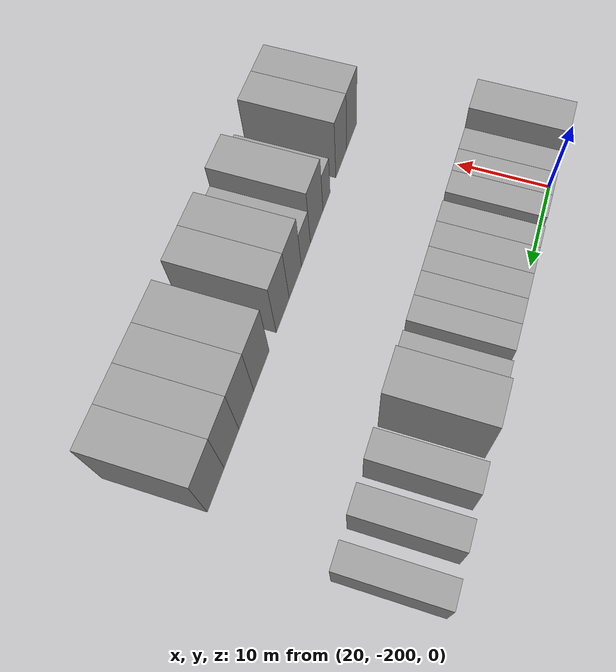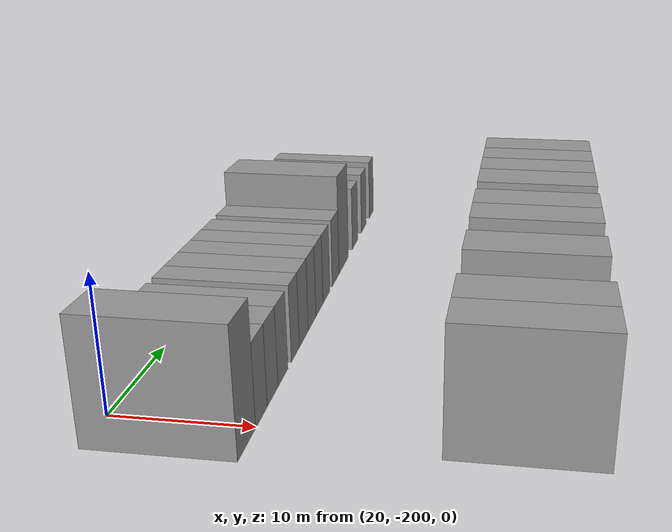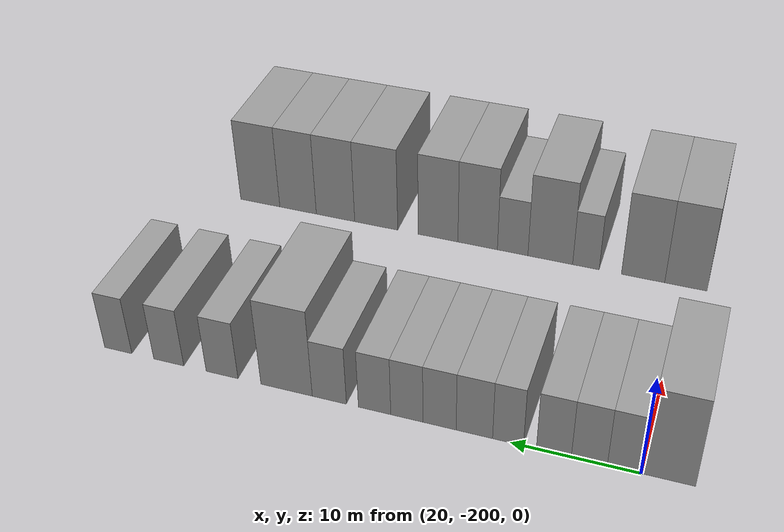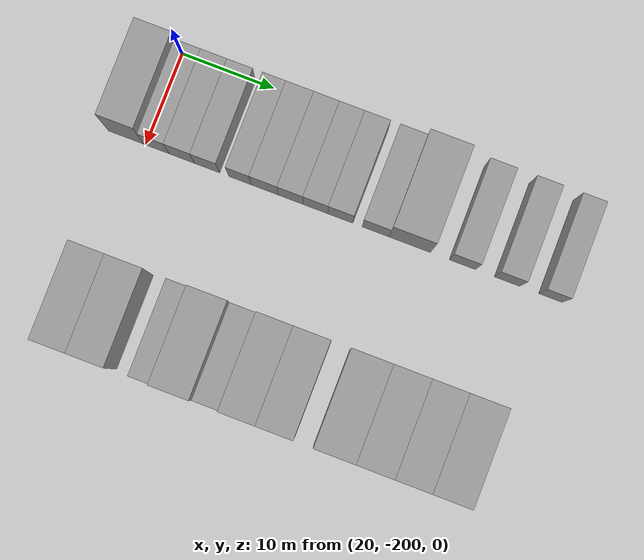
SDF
<sdf version="1.6">
 <world name="default">
  <model name="building_1">
   <static>1</static>
   <pose>25.0000 -202.0835 0 0.000000 0.000000 0.000000</pose>
   <link name="link">
    <pose>0 0 4.50 0 0 0</pose>
    <collision name="collision"><geometry><box><size>10.0000 3.8331 9.0000</size></box></geometry></collision>
    <visual name="visual">
     <cast_shadows>0</cast_shadows>
     <geometry><box><size>10.0000 3.8331 9.0000</size></box></geometry>
     <material>
      <script>
       <uri>model://grey_wall/materials/scripts</uri>
       <uri>model://grey_wall/materials/textures</uri>
       <name>vrc/grey_wall</name>
      </script>
     </material>
    </visual>
   </link>
  </model>
  <model name="building_2">
   <static>1</static>
   <pose>25.0000 -198.8063 0 0.000000 0.000000 0.000000</pose>
   <link name="link">
    <pose>0 0 3.00 0 0 0</pose>
    <collision name="collision"><geometry><box><size>10.0000 2.7212 6.0000</size></box></geometry></collision>
    <visual name="visual">
     <cast_shadows>0</cast_shadows>
     <geometry><box><size>10.0000 2.7212 6.0000</size></box></geometry>
     <material>
      <script>
       <uri>model://grey_wall/materials/scripts</uri>
       <uri>model://grey_wall/materials/textures</uri>
       <name>vrc/grey_wall</name>
      </script>
     </material>
    </visual>
   </link>
  </model>
  <model name="building_3">
   <static>1</static>
   <pose>25.0000 -196.0775 0 0.000000 0.000000 0.000000</pose>
   <link name="link">
    <pose>0 0 3.00 0 0 0</pose>
    <collision name="collision"><geometry><box><size>10.0000 2.7364 6.0000</size></box></geometry></collision>
    <visual name="visual">
     <cast_shadows>0</cast_shadows>
     <geometry><box><size>10.0000 2.7364 6.0000</size></box></geometry>
     <material>
      <script>
       <uri>model://grey_wall/materials/scripts</uri>
       <uri>model://grey_wall/materials/textures</uri>
       <name>vrc/grey_wall</name>
      </script>
     </material>
    </visual>
   </link>
  </model>
  <model name="building_4">
   <static>1</static>
   <pose>25.0000 -193.3629 0 0.000000 0.000000 0.000000</pose>
   <link name="link">
    <pose>0 0 3.00 0 0 0</pose>
    <collision name="collision"><geometry><box><size>10.0000 2.6928 6.0000</size></box></geometry></collision>
    <visual name="visual">
     <cast_shadows>0</cast_shadows>
     <geometry><box><size>10.0000 2.6928 6.0000</size></box></geometry>
     <material>
      <script>
       <uri>model://grey_wall/materials/scripts</uri>
       <uri>model://grey_wall/materials/textures</uri>
       <name>vrc/grey_wall</name>
      </script>
     </material>
    </visual>
   </link>
  </model>
  <model name="building_5">
   <static>1</static>
   <pose>25.0000 -189.8049 0 0.000000 0.000000 0.000000</pose>
   <link name="link">
    <pose>0 0 3.00 0 0 0</pose>
    <collision name="collision"><geometry><box><size>10.0000 2.4231 6.0000</size></box></geometry></collision>
    <visual name="visual">
     <cast_shadows>0</cast_shadows>
     <geometry><box><size>10.0000 2.4231 6.0000</size></box></geometry>
     <material>
      <script>
       <uri>model://grey_wall/materials/scripts</uri>
       <uri>model://grey_wall/materials/textures</uri>
       <name>vrc/grey_wall</name>
      </script>
     </material>
    </visual>
   </link>
  </model>
  <model name="building_6">
   <static>1</static>
   <pose>25.0000 -187.1418 0 0.000000 0.000000 0.000000</pose>
   <link name="link">
    <pose>0 0 3.00 0 0 0</pose>
    <collision name="collision"><geometry><box><size>10.0000 2.9031 6.0000</size></box></geometry></collision>
    <visual name="visual">
     <cast_shadows>0</cast_shadows>
     <geometry><box><size>10.0000 2.9031 6.0000</size></box></geometry>
     <material>
      <script>
       <uri>model://grey_wall/materials/scripts</uri>
       <uri>model://grey_wall/materials/textures</uri>
       <name>vrc/grey_wall</name>
      </script>
     </material>
    </visual>
   </link>
  </model>
  <model name="building_7">
   <static>1</static>
   <pose>25.0000 -184.3537 0 0.000000 0.000000 0.000000</pose>
   <link name="link">
    <pose>0 0 3.00 0 0 0</pose>
    <collision name="collision"><geometry><box><size>10.0000 2.6732 6.0000</size></box></geometry></collision>
    <visual name="visual">
     <cast_shadows>0</cast_shadows>
     <geometry><box><size>10.0000 2.6732 6.0000</size></box></geometry>
     <material>
      <script>
       <uri>model://grey_wall/materials/scripts</uri>
       <uri>model://grey_wall/materials/textures</uri>
       <name>vrc/grey_wall</name>
      </script>
     </material>
    </visual>
   </link>
  </model>
  <model name="building_8">
   <static>1</static>
   <pose>25.0000 -181.7031 0 0.000000 0.000000 0.000000</pose>
   <link name="link">
    <pose>0 0 3.00 0 0 0</pose>
    <collision name="collision"><geometry><box><size>10.0000 2.6281 6.0000</size></box></geometry></collision>
    <visual name="visual">
     <cast_shadows>0</cast_shadows>
     <geometry><box><size>10.0000 2.6281 6.0000</size></box></geometry>
     <material>
      <script>
       <uri>model://grey_wall/materials/scripts</uri>
       <uri>model://grey_wall/materials/textures</uri>
       <name>vrc/grey_wall</name>
      </script>
     </material>
    </visual>
   </link>
  </model>
  <model name="building_9">
   <static>1</static>
   <pose>25.0000 -179.0499 0 0.000000 0.000000 0.000000</pose>
   <link name="link">
    <pose>0 0 3.00 0 0 0</pose>
    <collision name="collision"><geometry><box><size>10.0000 2.6783 6.0000</size></box></geometry></collision>
    <visual name="visual">
     <cast_shadows>0</cast_shadows>
     <geometry><box><size>10.0000 2.6783 6.0000</size></box></geometry>
     <material>
      <script>
       <uri>model://grey_wall/materials/scripts</uri>
       <uri>model://grey_wall/materials/textures</uri>
       <name>vrc/grey_wall</name>
      </script>
     </material>
    </visual>
   </link>
  </model>
  <model name="building_10">
   <static>1</static>
   <pose>25.0000 -175.2696 0 0.000000 0.000000 0.000000</pose>
   <link name="link">
    <pose>0 0 3.00 0 0 0</pose>
    <collision name="collision"><geometry><box><size>10.0000 2.8823 6.0000</size></box></geometry></collision>
    <visual name="visual">
     <cast_shadows>0</cast_shadows>
     <geometry><box><size>10.0000 2.8823 6.0000</size></box></geometry>
     <material>
      <script>
       <uri>model://grey_wall/materials/scripts</uri>
       <uri>model://grey_wall/materials/textures</uri>
       <name>vrc/grey_wall</name>
      </script>
     </material>
    </visual>
   </link>
  </model>
  <model name="building_11">
   <static>1</static>
   <pose>25.0000 -171.6213 0 0.000000 0.000000 0.000000</pose>
   <link name="link">
    <pose>0 0 4.50 0 0 0</pose>
    <collision name="collision"><geometry><box><size>10.0000 4.4142 9.0000</size></box></geometry></collision>
    <visual name="visual">
     <cast_shadows>0</cast_shadows>
     <geometry><box><size>10.0000 4.4142 9.0000</size></box></geometry>
     <material>
      <script>
       <uri>model://grey_wall/materials/scripts</uri>
       <uri>model://grey_wall/materials/textures</uri>
       <name>vrc/grey_wall</name>
      </script>
     </material>
    </visual>
   </link>
  </model>
  <model name="building_12">
   <static>1</static>
   <pose>25.0000 -166.0089 0 0.000000 0.000000 0.000000</pose>
   <link name="link">
    <pose>0 0 3.00 0 0 0</pose>
    <collision name="collision"><geometry><box><size>10.0000 2.8105 6.0000</size></box></geometry></collision>
    <visual name="visual">
     <cast_shadows>0</cast_shadows>
     <geometry><box><size>10.0000 2.8105 6.0000</size></box></geometry>
     <material>
      <script>
       <uri>model://grey_wall/materials/scripts</uri>
       <uri>model://grey_wall/materials/textures</uri>
       <name>vrc/grey_wall</name>
      </script>
     </material>
    </visual>
   </link>
  </model>
  <model name="building_13">
   <static>1</static>
   <pose>25.0000 -161.2467 0 0.000000 0.000000 0.000000</pose>
   <link name="link">
    <pose>0 0 3.00 0 0 0</pose>
    <collision name="collision"><geometry><box><size>10.0000 2.7138 6.0000</size></box></geometry></collision>
    <visual name="visual">
     <cast_shadows>0</cast_shadows>
     <geometry><box><size>10.0000 2.7138 6.0000</size></box></geometry>
     <material>
      <script>
       <uri>model://grey_wall/materials/scripts</uri>
       <uri>model://grey_wall/materials/textures</uri>
       <name>vrc/grey_wall</name>
      </script>
     </material>
    </visual>
   </link>
  </model>
  <model name="building_14">
   <static>1</static>
   <pose>25.0000 -156.6414 0 0.000000 0.000000 0.000000</pose>
   <link name="link">
    <pose>0 0 3.00 0 0 0</pose>
    <collision name="collision"><geometry><box><size>10.0000 2.4969 6.0000</size></box></geometry></collision>
    <visual name="visual">
     <cast_shadows>0</cast_shadows>
     <geometry><box><size>10.0000 2.4969 6.0000</size></box></geometry>
     <material>
      <script>
       <uri>model://grey_wall/materials/scripts</uri>
       <uri>model://grey_wall/materials/textures</uri>
       <name>vrc/grey_wall</name>
      </script>
     </material>
    </visual>
   </link>
  </model>
  <model name="building_103">
   <static>1</static>
   <pose>47.0000 -200.1526 0 0.000000 0.000000 0.000000</pose>
   <link name="link">
    <pose>0 0 4.50 0 0 0</pose>
    <collision name="collision"><geometry><box><size>10.0000 3.6948 9.0000</size></box></geometry></collision>
    <visual name="visual">
     <cast_shadows>0</cast_shadows>
     <geometry><box><size>10.0000 3.6948 9.0000</size></box></geometry>
     <material>
      <script>
       <uri>model://grey_wall/materials/scripts</uri>
       <uri>model://grey_wall/materials/textures</uri>
       <name>vrc/grey_wall</name>
      </script>
     </material>
    </visual>
   </link>
  </model>
  <model name="building_104">
   <static>1</static>
   <pose>47.0000 -196.3821 0 0.000000 0.000000 0.000000</pose>
   <link name="link">
    <pose>0 0 4.50 0 0 0</pose>
    <collision name="collision"><geometry><box><size>10.0000 3.8462 9.0000</size></box></geometry></collision>
    <visual name="visual">
     <cast_shadows>0</cast_shadows>
     <geometry><box><size>10.0000 3.8462 9.0000</size></box></geometry>
     <material>
      <script>
       <uri>model://grey_wall/materials/scripts</uri>
       <uri>model://grey_wall/materials/textures</uri>
       <name>vrc/grey_wall</name>
      </script>
     </material>
    </visual>
   </link>
  </model>
  <model name="building_105">
   <static>1</static>
   <pose>47.0000 -191.2545 0 0.000000 0.000000 0.000000</pose>
   <link name="link">
    <pose>0 0 3.00 0 0 0</pose>
    <collision name="collision"><geometry><box><size>10.0000 2.4089 6.0000</size></box></geometry></collision>
    <visual name="visual">
     <cast_shadows>0</cast_shadows>
     <geometry><box><size>10.0000 2.4089 6.0000</size></box></geometry>
     <material>
      <script>
       <uri>model://grey_wall/materials/scripts</uri>
       <uri>model://grey_wall/materials/textures</uri>
       <name>vrc/grey_wall</name>
      </script>
     </material>
    </visual>
   </link>
  </model>
  <model name="building_106">
   <static>1</static>
   <pose>47.0000 -187.9892 0 0.000000 0.000000 0.000000</pose>
   <link name="link">
    <pose>0 0 4.50 0 0 0</pose>
    <collision name="collision"><geometry><box><size>10.0000 4.1216 9.0000</size></box></geometry></collision>
    <visual name="visual">
     <cast_shadows>0</cast_shadows>
     <geometry><box><size>10.0000 4.1216 9.0000</size></box></geometry>
     <material>
      <script>
       <uri>model://grey_wall/materials/scripts</uri>
       <uri>model://grey_wall/materials/textures</uri>
       <name>vrc/grey_wall</name>
      </script>
     </material>
    </visual>
   </link>
  </model>
  <model name="building_107">
   <static>1</static>
   <pose>47.0000 -184.5022 0 0.000000 0.000000 0.000000</pose>
   <link name="link">
    <pose>0 0 3.00 0 0 0</pose>
    <collision name="collision"><geometry><box><size>10.0000 2.8522 6.0000</size></box></geometry></collision>
    <visual name="visual">
     <cast_shadows>0</cast_shadows>
     <geometry><box><size>10.0000 2.8522 6.0000</size></box></geometry>
     <material>
      <script>
       <uri>model://grey_wall/materials/scripts</uri>
       <uri>model://grey_wall/materials/textures</uri>
       <name>vrc/grey_wall</name>
      </script>
     </material>
    </visual>
   </link>
  </model>
  <model name="building_108">
   <static>1</static>
   <pose>47.0000 -181.2032 0 0.000000 0.000000 0.000000</pose>
   <link name="link">
    <pose>0 0 4.50 0 0 0</pose>
    <collision name="collision"><geometry><box><size>10.0000 3.7458 9.0000</size></box></geometry></collision>
    <visual name="visual">
     <cast_shadows>0</cast_shadows>
     <geometry><box><size>10.0000 3.7458 9.0000</size></box></geometry>
     <material>
      <script>
       <uri>model://grey_wall/materials/scripts</uri>
       <uri>model://grey_wall/materials/textures</uri>
       <name>vrc/grey_wall</name>
      </script>
     </material>
    </visual>
   </link>
  </model>
  <model name="building_109">
   <static>1</static>
   <pose>47.0000 -177.4245 0 0.000000 0.000000 0.000000</pose>
   <link name="link">
    <pose>0 0 4.50 0 0 0</pose>
    <collision name="collision"><geometry><box><size>10.0000 3.8117 9.0000</size></box></geometry></collision>
    <visual name="visual">
     <cast_shadows>0</cast_shadows>
     <geometry><box><size>10.0000 3.8117 9.0000</size></box></geometry>
     <material>
      <script>
       <uri>model://grey_wall/materials/scripts</uri>
       <uri>model://grey_wall/materials/textures</uri>
       <name>vrc/grey_wall</name>
      </script>
     </material>
    </visual>
   </link>
  </model>
  <model name="building_110">
   <static>1</static>
   <pose>47.0000 -171.3916 0 0.000000 0.000000 0.000000</pose>
   <link name="link">
    <pose>0 0 4.50 0 0 0</pose>
    <collision name="collision"><geometry><box><size>10.0000 4.2540 9.0000</size></box></geometry></collision>
    <visual name="visual">
     <cast_shadows>0</cast_shadows>
     <geometry><box><size>10.0000 4.2540 9.0000</size></box></geometry>
     <material>
      <script>
       <uri>model://grey_wall/materials/scripts</uri>
       <uri>model://grey_wall/materials/textures</uri>
       <name>vrc/grey_wall</name>
      </script>
     </material>
    </visual>
   </link>
  </model>
  <model name="building_111">
   <static>1</static>
   <pose>47.0000 -167.3357 0 0.000000 0.000000 0.000000</pose>
   <link name="link">
    <pose>0 0 4.50 0 0 0</pose>
    <collision name="collision"><geometry><box><size>10.0000 3.8578 9.0000</size></box></geometry></collision>
    <visual name="visual">
     <cast_shadows>0</cast_shadows>
     <geometry><box><size>10.0000 3.8578 9.0000</size></box></geometry>
     <material>
      <script>
       <uri>model://grey_wall/materials/scripts</uri>
       <uri>model://grey_wall/materials/textures</uri>
       <name>vrc/grey_wall</name>
      </script>
     </material>
    </visual>
   </link>
  </model>
  <model name="building_112">
   <static>1</static>
   <pose>47.0000 -163.5439 0 0.000000 0.000000 0.000000</pose>
   <link name="link">
    <pose>0 0 4.50 0 0 0</pose>
    <collision name="collision"><geometry><box><size>10.0000 3.7256 9.0000</size></box></geometry></collision>
    <visual name="visual">
     <cast_shadows>0</cast_shadows>
     <geometry><box><size>10.0000 3.7256 9.0000</size></box></geometry>
     <material>
      <script>
       <uri>model://grey_wall/materials/scripts</uri>
       <uri>model://grey_wall/materials/textures</uri>
       <name>vrc/grey_wall</name>
      </script>
     </material>
    </visual>
   </link>
  </model>
  <model name="building_113">
   <static>1</static>
   <pose>47.0000 -159.6602 0 0.000000 0.000000 0.000000</pose>
   <link name="link">
    <pose>0 0 4.50 0 0 0</pose>
    <collision name="collision"><geometry><box><size>10.0000 4.0419 9.0000</size></box></geometry></collision>
    <visual name="visual">
     <cast_shadows>0</cast_shadows>
     <geometry><box><size>10.0000 4.0419 9.0000</size></box></geometry>
     <material>
      <script>
       <uri>model://grey_wall/materials/scripts</uri>
       <uri>model://grey_wall/materials/textures</uri>
       <name>vrc/grey_wall</name>
      </script>
     </material>
    </visual>
   </link>
  </model>
 </world>
</sdf>
